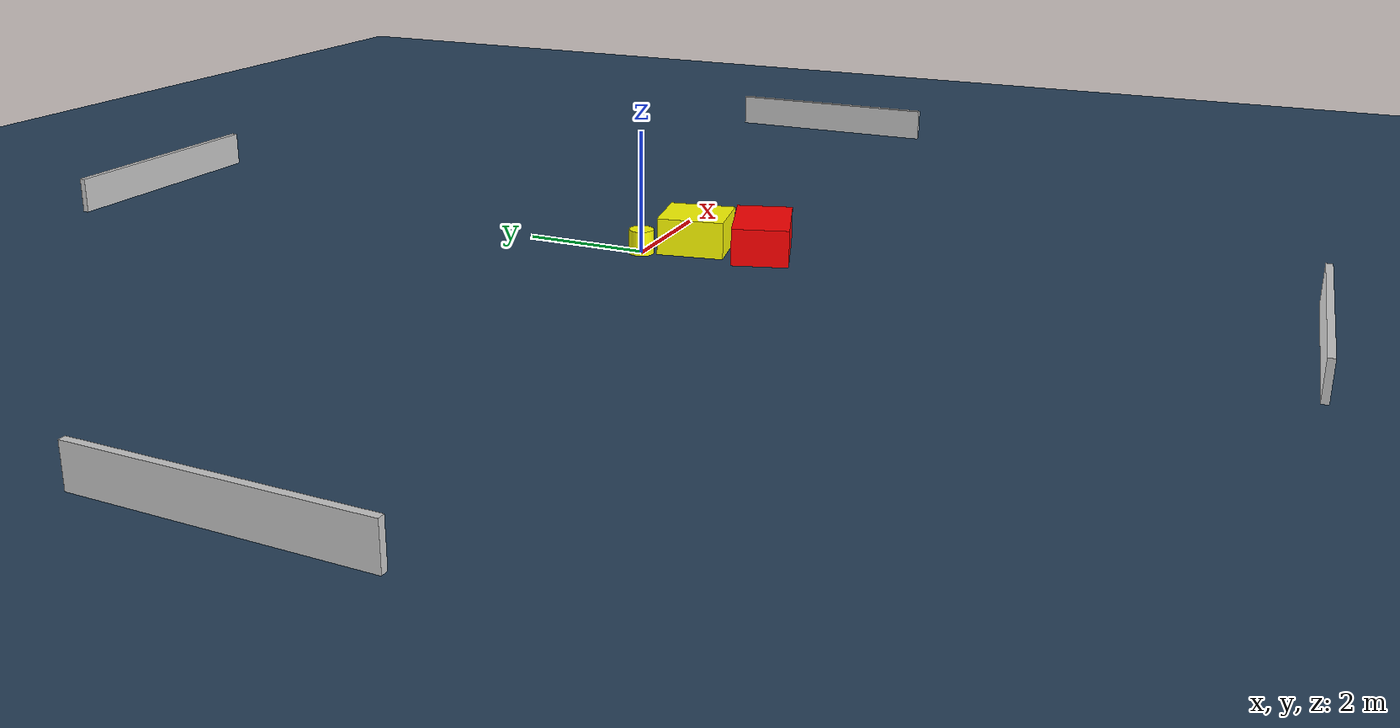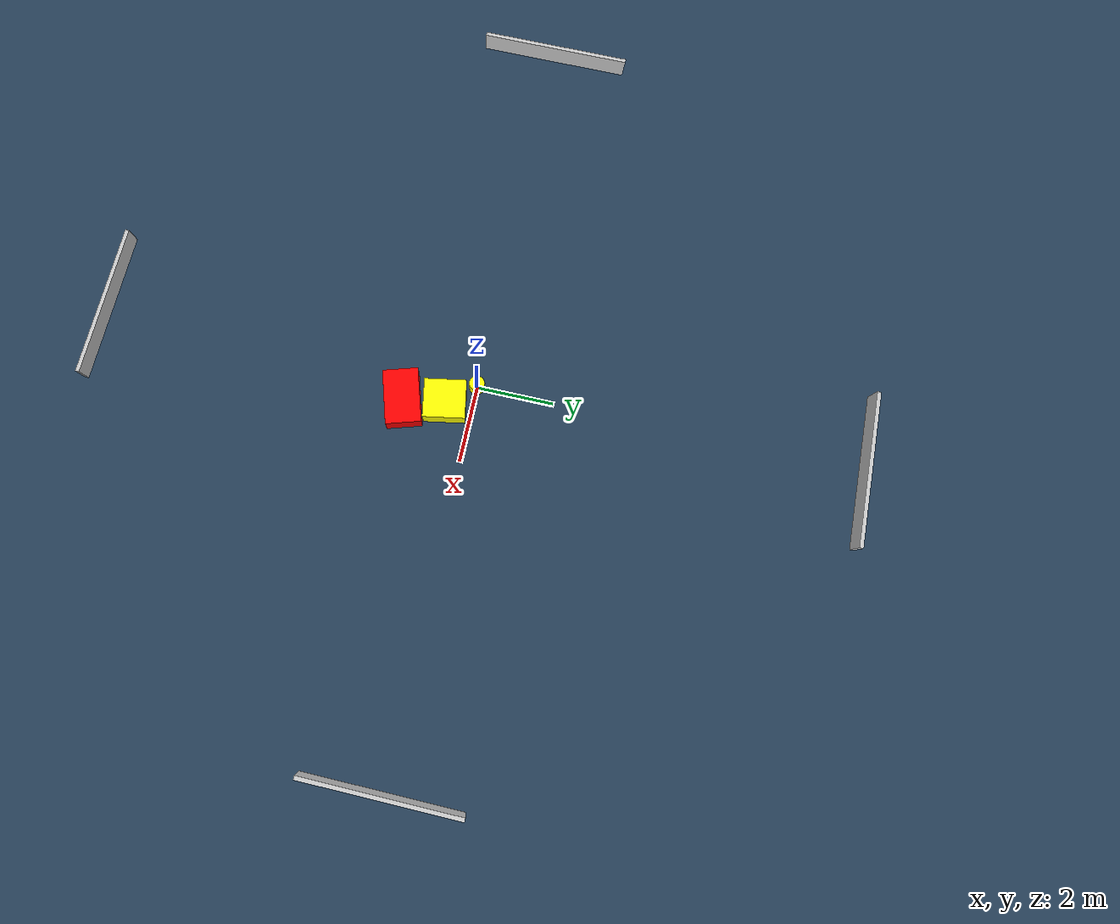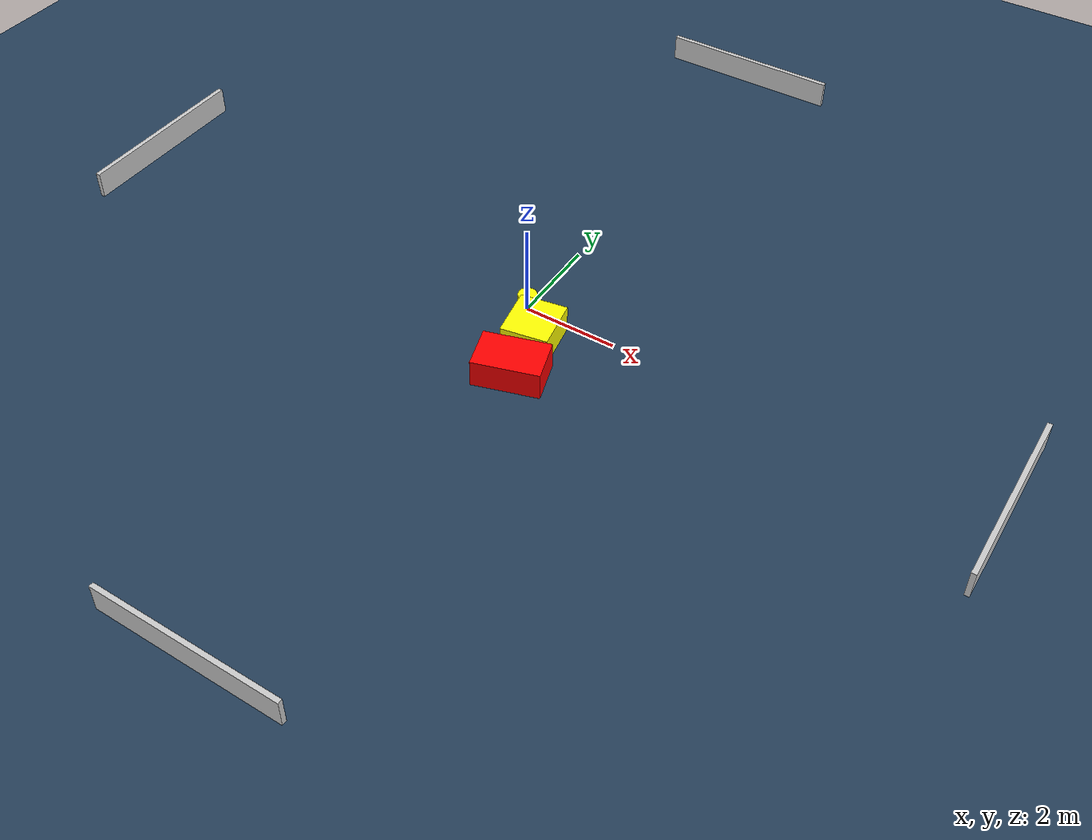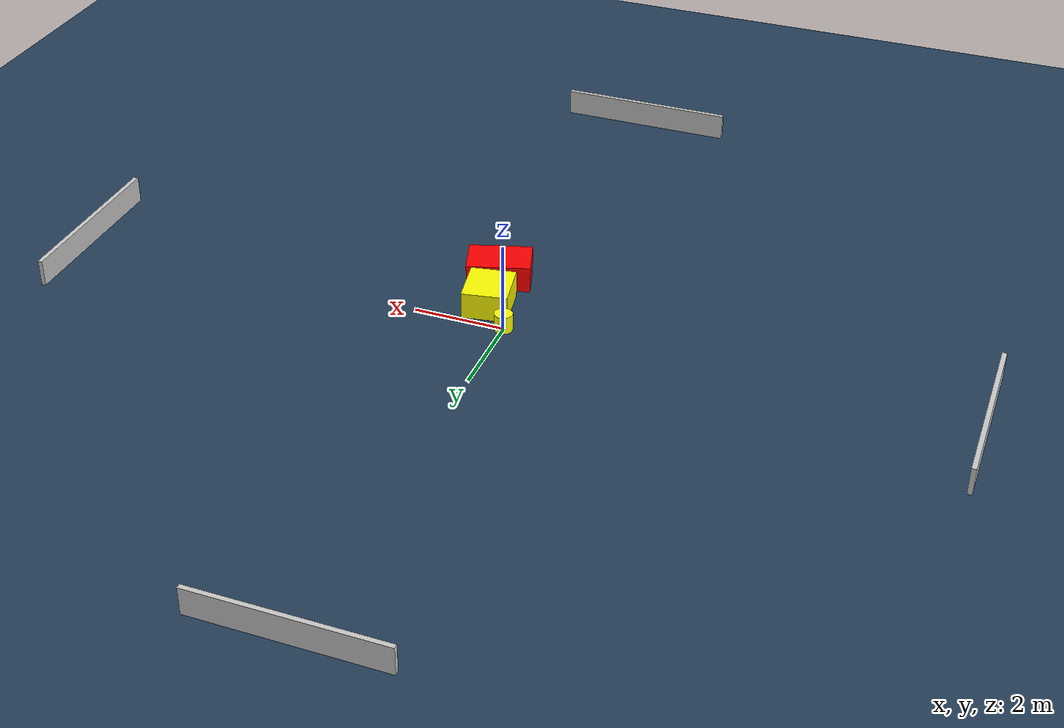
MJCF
<?xml version="1.0" ?>
<mujoco model="generated_environment">
  <option timestep="0.01" integrator="RK4" cone="elliptic"/>
  <default>
    <geom density="1"/>
  </default>
  <asset>
    <texture builtin="gradient" height="3072" name="skybox" rgb1="0.3 0.5 0.7" rgb2="0 0 0" type="skybox" width="512"/>
    <texture builtin="checker" height="300" name="groundplane" rgb1="0.2 0.3 0.4" rgb2="0.1 0.2 0.3" type="2d" width="300"/>
    <material name="groundplane" reflectance="0.2" texrepeat="5 5" texture="groundplane"/>
  </asset>
  <worldbody>
    <light dir="0 0 -1" directional="true" pos="0 0 1.5"/>
    <geom condim="3" friction="0.5 0.005 0.001" material="groundplane" name="floor" pos="0 0 0" size="0 0 0.05" type="plane"/>
    <body name="walls">
      <geom name="wall_1" condim="4" pos="-10.0 0.0 0.3" rgba="0.800000011920929 0.800000011920929 0.800000011920929 1.0" size="0.05 2.0 0.3" type="box"/>
      <geom name="wall_2" condim="4" pos="10.0 0.0 0.3" rgba="0.800000011920929 0.800000011920929 0.800000011920929 1.0" size="0.05 2.0 0.3" type="box"/>
      <geom name="wall_3" condim="4" pos="0.0 -10.0 0.3" rgba="0.800000011920929 0.800000011920929 0.800000011920929 1.0" size="2.0 0.05 0.3" type="box"/>
      <geom name="wall_4" condim="4" pos="0.0 10.0 0.3" rgba="0.800000011920929 0.800000011920929 0.800000011920929 1.0" size="2.0 0.05 0.3" type="box"/>
    </body>
    <body name="robot">
      <joint name="joint_x" type="slide" pos="0 0 0" axis="1 0 0"/>
      <joint name="joint_y" type="slide" pos="0 0 0" axis="0 1 0"/>
      <geom name="robot" type="cylinder" pos="0.0 0.0 0.2" size="0.2 0.2 0.0" mass="5.0" friction="1.0 0.005 0.0001" condim="4" rgba="1.0 1.0 0.0 1.0"/>
    </body>
    <body name="obstacle_1_movable">
      <geom name="obstacle_1_movable" condim="4" pos="0.6050748410331627 -0.7075148011137083 0.3" euler="0 0 280.12075774338484" friction="0.0 0.005 0.001" rgba="1.0 1.0 0.0 1.0" size="0.5385750623039474 0.49752319000122636 0.3" type="box" mass="0.1"/>
      <joint type="free"/>
    </body>
    <body name="obstacle_2_static">
      <geom name="obstacle_2_static" condim="4" pos="0.778331945642889 -1.7812045946565584 0.3" euler="0 0 17.138795508716264" friction="0.0 0.005 0.001" rgba="1.0 0.0 0.0 1.0" size="0.699135118857565 0.45326536595456207 0.3" type="box"/>
    </body>
  </worldbody>
  <actuator>
    <motor name="actuator_x" joint="joint_x" gear="1" ctrlrange="-1 1"/>
    <motor name="actuator_y" joint="joint_y" gear="1" ctrlrange="-1 1"/>
  </actuator>
</mujoco>
